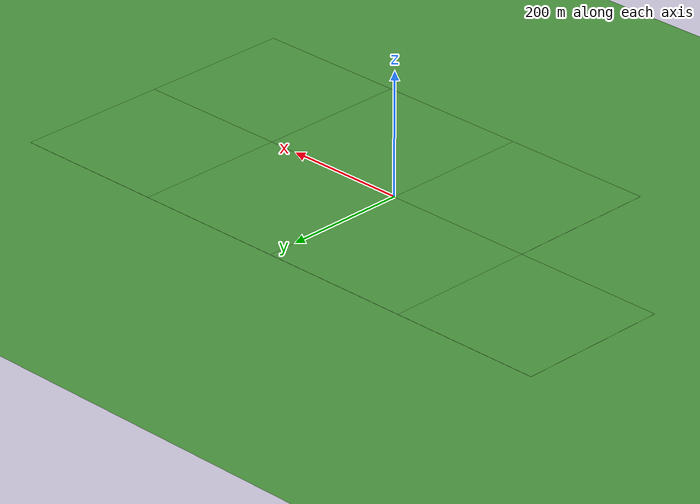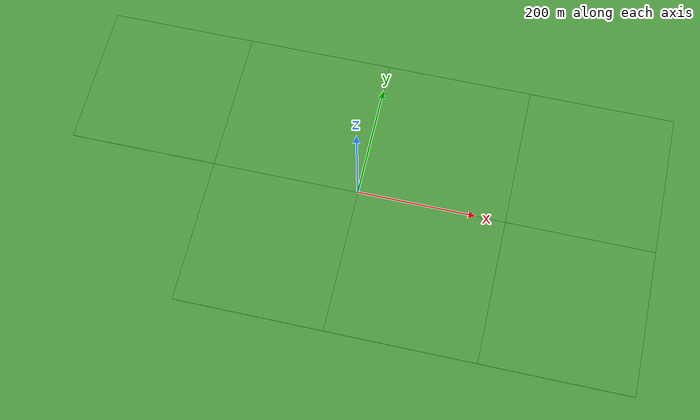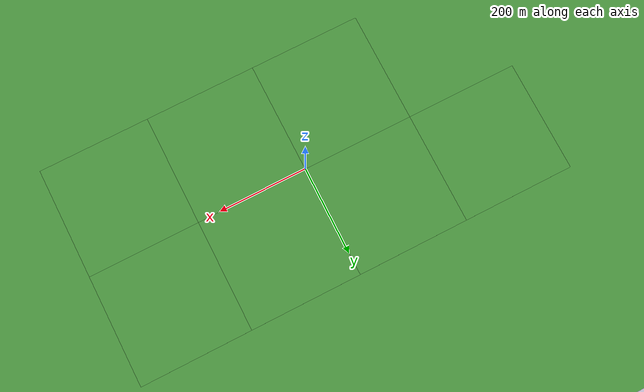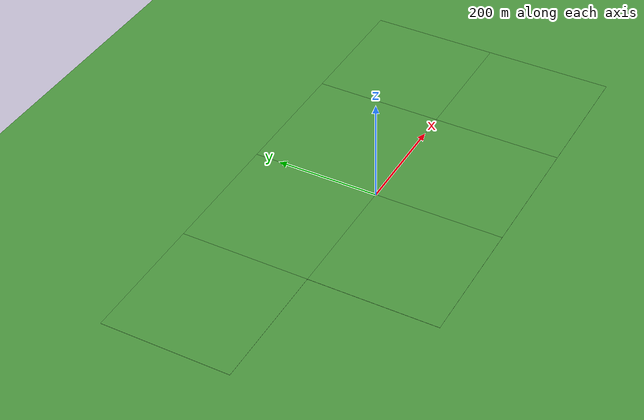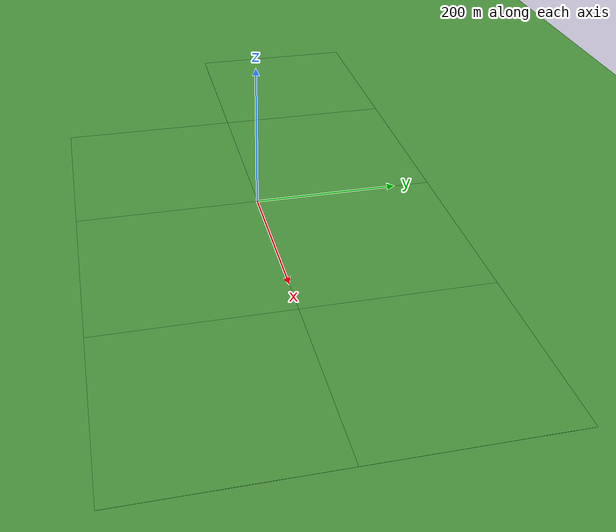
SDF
<sdf version="1.4">
 <world name="yosemite">
  <scene>
   <ambient>0.2 0.2 0.2 1.0</ambient>
   <grid>false</grid>
   <sky><clouds><speed>4</speed></clouds></sky>
  </scene>
  <plugin name="ros_interface_plugin" filename="librotors_gazebo_ros_interface_plugin.so"/>
  <spherical_coordinates>
   <surface_model>EARTH_WGS84</surface_model>
   <latitude_deg>47.3667</latitude_deg>
   <longitude_deg>8.5500</longitude_deg>
   <elevation>500.0</elevation>
   <heading_deg>0</heading_deg>
  </spherical_coordinates>
  <physics type="ode">
   <ode>
    <solver><type>quick</type><iters>1000</iters><sor>1.3</sor></solver>
    <constraints>
     <cfm>0</cfm>
     <erp>0.2</erp>
     <contact_max_correcting_vel>100</contact_max_correcting_vel>
     <contact_surface_layer>0.001</contact_surface_layer>
    </constraints>
   </ode>
   <max_step_size>0.01</max_step_size>
   <real_time_factor>1</real_time_factor>
   <real_time_update_rate>100</real_time_update_rate>
   <gravity>0 0 -9.8</gravity>
  </physics>
  <light type="directional" name="sun">
   <cast_shadows>false</cast_shadows>
   <pose>0 0 300 0 0 0</pose>
   <diffuse>0.8 0.8 0.8 1</diffuse>
   <specular>0.0 0.0 0.0 1</specular>
   <attenuation>
    <range>1000</range>
    <constant>0.9</constant>
    <linear>0.01</linear>
    <quadratic>0.001</quadratic>
   </attenuation>
   <direction>0.2 0.2 -0.9</direction>
  </light>
  <model name="grass_takeoff_plane">
   <static>true</static>
   <link name="link">
    <collision name="collision">
     <geometry><plane><normal>0 0 1</normal><size>1000 1000</size></plane></geometry>
     <surface><friction><ode><mu>0.2</mu><mu2>.2</mu2></ode></friction></surface>
    </collision>
    <visual name="visual_1">
     <pose>-375 -125 0 0 0 0</pose>
     <cast_shadows>false</cast_shadows>
     <geometry><plane><normal>0 0 1</normal><size>250 250</size></plane></geometry>
     <material>
      <script>
       <uri>model://grass_plane/materials/scripts</uri>
       <uri>model://grass_plane/materials/textures</uri>
       <name>vrc/grass</name>
      </script>
     </material>
    </visual>
    <visual name="visual_2">
     <pose>-375 125 0 0 0 0</pose>
     <cast_shadows>false</cast_shadows>
     <geometry><plane><normal>0 0 1</normal><size>250 250</size></plane></geometry>
     <material>
      <script>
       <uri>model://grass_plane/materials/scripts</uri>
       <uri>model://grass_plane/materials/textures</uri>
       <name>vrc/grass</name>
      </script>
     </material>
    </visual>
    <visual name="visual_3">
     <pose>-125 -125 0 0 0 0</pose>
     <cast_shadows>false</cast_shadows>
     <geometry><plane><normal>0 0 1</normal><size>250 250</size></plane></geometry>
     <material>
      <script>
       <uri>model://grass_plane/materials/scripts</uri>
       <uri>model://grass_plane/materials/textures</uri>
       <name>vrc/grass</name>
      </script>
     </material>
    </visual>
    <visual name="visual_4">
     <pose>-125 125 0 0 0 0</pose>
     <cast_shadows>false</cast_shadows>
     <geometry><plane><normal>0 0 1</normal><size>250 250</size></plane></geometry>
     <material>
      <script>
       <uri>model://grass_plane/materials/scripts</uri>
       <uri>model://grass_plane/materials/textures</uri>
       <name>vrc/grass</name>
      </script>
     </material>
    </visual>
    <visual name="visual_5">
     <pose>125 -125 0 0 0 0</pose>
     <cast_shadows>false</cast_shadows>
     <geometry><plane><normal>0 0 1</normal><size>250 250</size></plane></geometry>
     <material>
      <script>
       <uri>model://grass_plane/materials/scripts</uri>
       <uri>model://grass_plane/materials/textures</uri>
       <name>vrc/grass</name>
      </script>
     </material>
    </visual>
    <visual name="visual_6">
     <pose>125 125 0 0 0 0</pose>
     <cast_shadows>false</cast_shadows>
     <geometry><plane><normal>0 0 1</normal><size>250 250</size></plane></geometry>
     <material>
      <script>
       <uri>model://grass_plane/materials/scripts</uri>
       <uri>model://grass_plane/materials/textures</uri>
       <name>vrc/grass</name>
      </script>
     </material>
    </visual>
    <visual name="visual_7">
     <pose>375 125 0 0 0 0</pose>
     <cast_shadows>false</cast_shadows>
     <geometry><plane><normal>0 0 1</normal><size>250 250</size></plane></geometry>
     <material>
      <script>
       <uri>model://grass_plane/materials/scripts</uri>
       <uri>model://grass_plane/materials/textures</uri>
       <name>vrc/grass</name>
      </script>
     </material>
    </visual>
    <visual name="visual_8">
     <pose>375 -125 0 0 0 0</pose>
     <cast_shadows>false</cast_shadows>
     <geometry><plane><normal>0 0 1</normal><size>250 250</size></plane></geometry>
     <material>
      <script>
       <uri>model://grass_plane/materials/scripts</uri>
       <uri>model://grass_plane/materials/textures</uri>
       <name>vrc/grass</name>
      </script>
     </material>
    </visual>
   </link>
  </model>
 </world>
</sdf>
